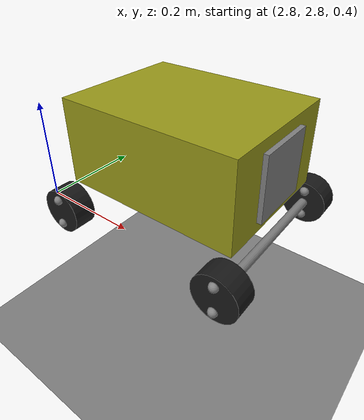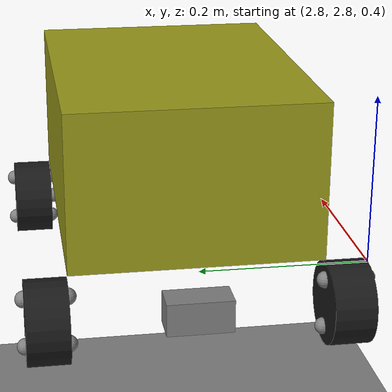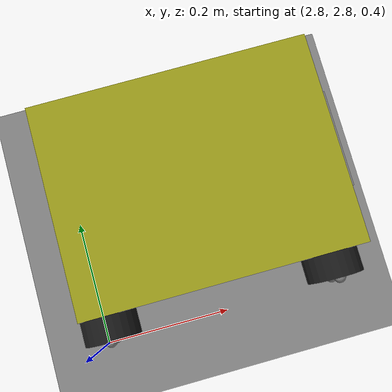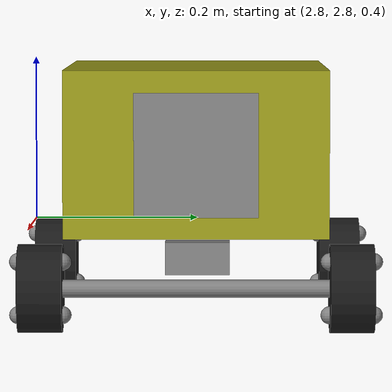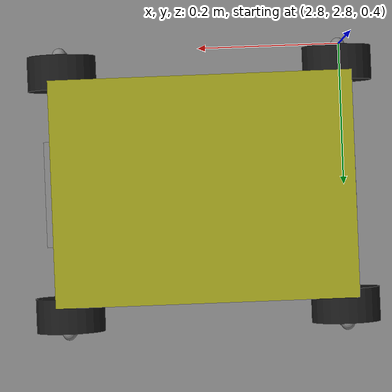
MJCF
<mujoco model="field (v0.1)">

	<include file="rover-4-wheels.xml"/>
	<worldbody>
		<geom name="ground" type="plane" size="1 1 1" pos="3 3 0"/>
	</worldbody>
</mujoco>

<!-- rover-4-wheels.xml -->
<mujoco model="rover (v0.2)">

    <compiler inertiafromgeom="true" angle="degree"/>
	<option	timestep="0.01" gravity="0 0 -9.81"/>

	<asset>
		<material name="MatWheel" specular="1" rgba=".1 .1 .1 1"/>
		<material name="MatBody" specular="1" rgba=".6 .6 .1 1"/>
	</asset>

	<default>
		<geom contype="1" conaffinity="1"/>
	</default>

	<visual>
		<headlight active="1"/>
		<scale camera=".5"/>
		<map znear="0.001" zfar="1000"/>
	</visual>

    <worldbody>

		<body name="rover" pos="3 3 .5">

			<light name="lamp" active="false" directional="true" cutoff="4" exponent="20" diffuse="1 1 1" specular="0 0 0" pos="0 0 2.5" dir="0 0 -1 "/>

			<camera name="first-person" mode="fixed" pos=".22 0 .08" euler="180 -133 -90" fovy="90"/>

			<joint name="centroid" type="free" pos="0 0 0"/>
            <geom name="rover-body" type="box" pos="0 0 0" size="0.2 0.15 .095" mass="12" material="MatBody"/>
			<site type="box" size=".01 .07 .07" pos=".2 0 0"/>
            <body name="r-l-wheel" pos="-0.2 0.15 -0.15">
                <joint name="r-l-drive-hinge" type="hinge" pos="0 0 0" axis="0 1 0" damping="0.01" />
                <geom type="cylinder" size=".05" fromto="0 0 0 0 0.05 0" mass=".125" material="MatWheel" condim="4"/>
				<site size=".01" pos="0 .05 .03"/>
				<site size=".01" pos="0 .05 -.03"/>
				<site size=".01" pos="0 0 .03"/>
				<site size=".01" pos="0 0 -.03"/>
            </body>
            <body name="r-r-wheel" pos="-0.2 -0.15 -0.15">
                <joint name="r-r-drive-hinge" type="hinge" pos="0 0 0" axis="0 1 0" damping="0.01"/>
                <geom type="cylinder" size=".05" fromto="0 0 0 0 -0.05 0" mass=".125" material="MatWheel" condim="4"/>
				<site size=".01" pos="0 -.05 .03"/>
				<site size=".01" pos="0 -.05 -.03"/>
				<site size=".01" pos="0 0 .03"/>
				<site size=".01" pos="0 0 -.03"/>
            </body>
			<body name="steer-bar" pos=".2 0 -.15">
                <joint name="steer-hinge" type="hinge" pos="0 0 0" axis="0 0 1" range="-6 6" limited="true" damping="0.01"/>
				<geom type="capsule" size=".01 .15" quat="0.70710678118 0.70710678118 0 0" contype="2" conaffinity="2"/>
				<body name="f-l-wheel" pos="0 0.15 0">
					<joint name="f-l-drive-hinge" type="hinge" pos="0 0 0" axis="0 1 0" damping="0.01"/>
					<geom type="cylinder" size=".05" fromto="0 0 0 0 0.05 0" mass=".125" material="MatWheel" condim="4"/>
					<site size=".01" pos="0 .05 .03"/>
					<site size=".01" pos="0 .05 -.03"/>
					<site size=".01" pos="0 0 .03"/>
					<site size=".01" pos="0 0 -.03"/>
				</body>
				<body name="f-r-wheel" pos="0 -0.15 0">
					<joint name="f-r-drive-hinge" type="hinge" pos="0 0 0" axis="0 1 0" damping="0.01"/>
					<geom type="cylinder" size=".05" fromto="0 0 0 0 -0.05 0" mass=".125" material="MatWheel" condim="4"/>
					<site size=".01" pos="0 -.05 .03"/>
					<site size=".01" pos="0 -.05 -.03"/>
					<site size=".01" pos="0 0 .03"/>
					<site size=".01" pos="0 0 -.03"/>
				</body>
			</body>

			<body name="drive" pos="-0.2 0 -0.15">
				<joint name="drive-hinge" type="hinge" axis="0 1 0" damping="0.01"/>
				<geom type="box" size=".02 .04 .02"/>
			</body>

        </body>
    </worldbody>

    <actuator>
        <motor name="steer-bar" joint="steer-hinge" ctrllimited="true" ctrlrange="-1.0 1.0" gear="1.0"/>
        <motor name="drive" joint="drive-hinge" ctrllimited="true" ctrlrange="-1.0 1.0" gear="1.5"/>
    </actuator>

	<equality>
		<joint name="r-drive-wheels" joint1="r-r-drive-hinge" joint2="drive-hinge" polycoef="0 1 0 0 0"/>
		<joint name="l-drive-wheels" joint1="r-l-drive-hinge" joint2="drive-hinge" polycoef="0 1 0 0 0"/>
	</equality>

</mujoco>
